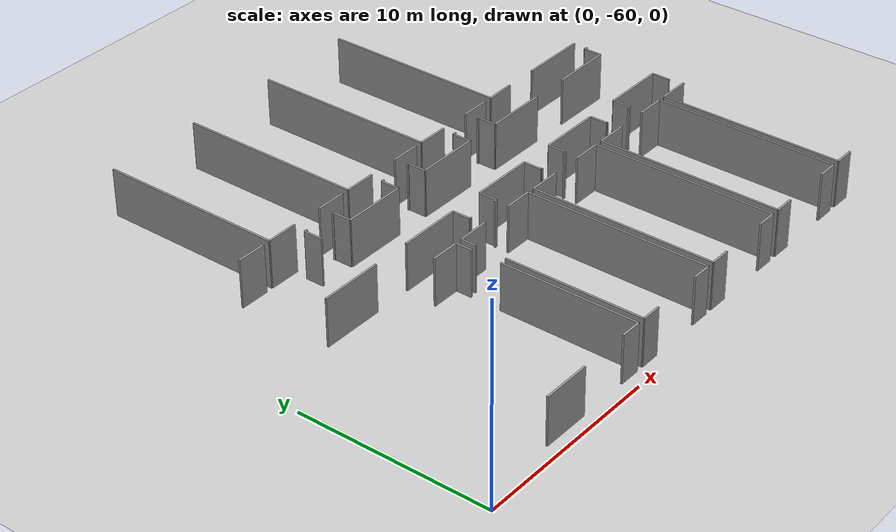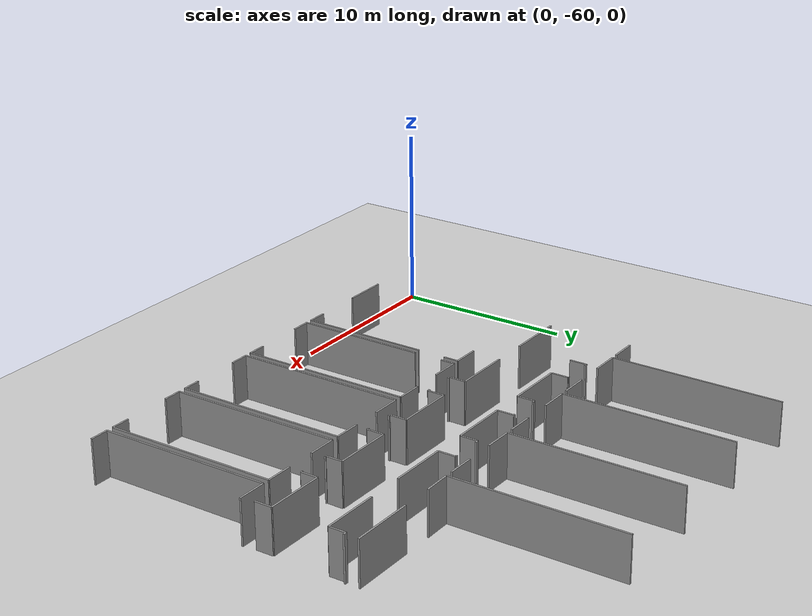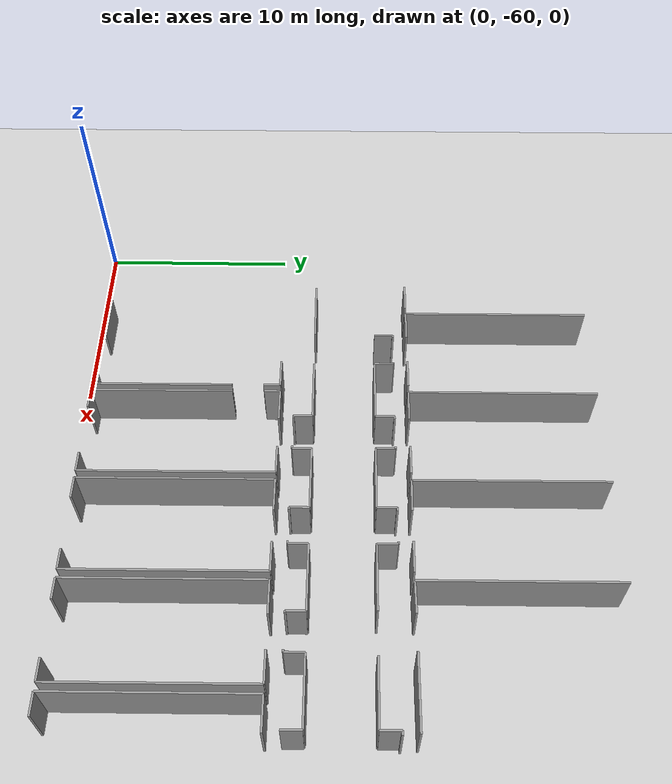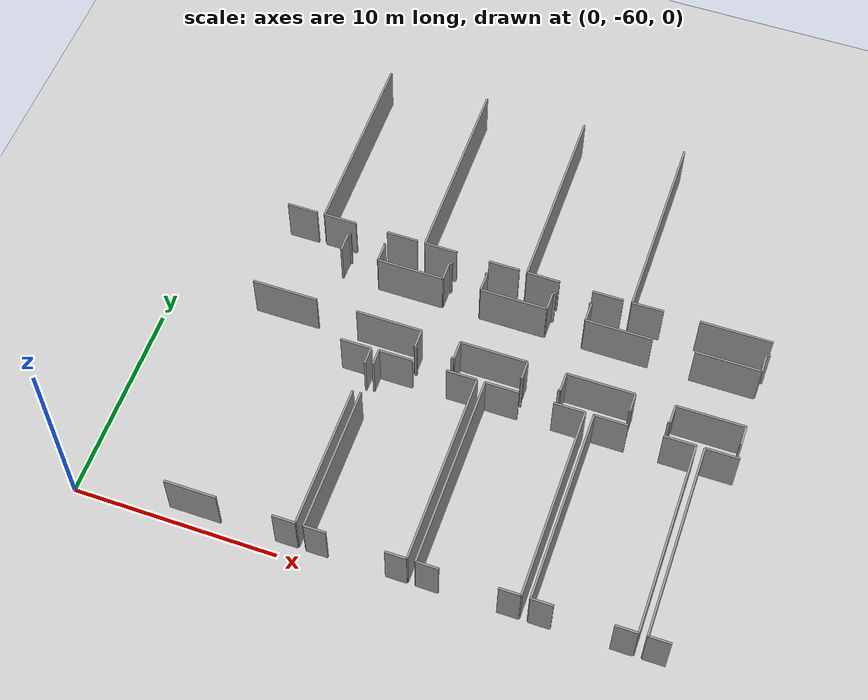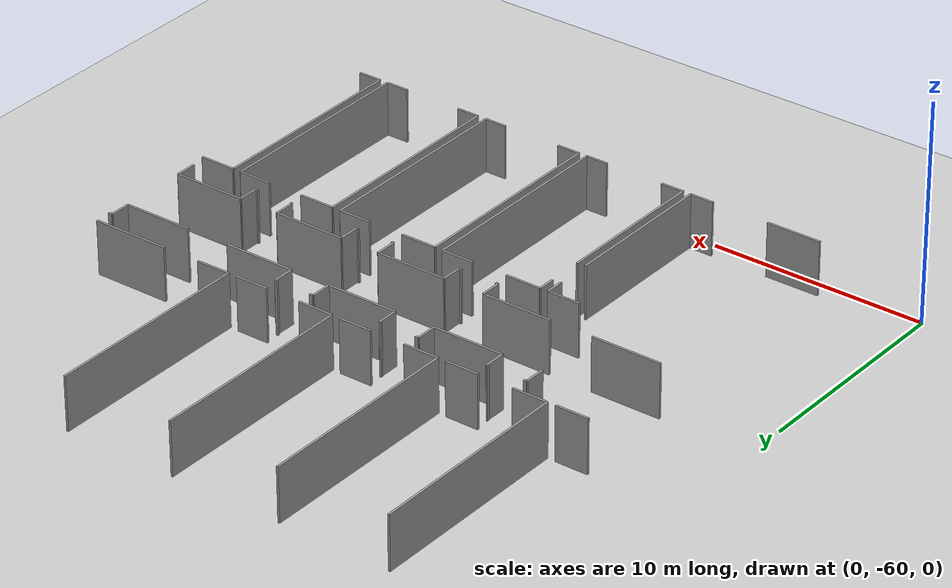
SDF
<sdf version="1.6">
 <world name="default">
  <model name="ground_plane">
   <static>1</static>
   <link name="link">
    <collision name="collision">
     <geometry><plane><normal>0 0 1</normal><size>100 100</size></plane></geometry>
     <surface><friction><ode><mu>100</mu><mu2>50</mu2></ode></friction></surface>
    </collision>
    <visual name="visual">
     <cast_shadows>0</cast_shadows>
     <geometry><plane><normal>0 0 1</normal><size>100 100</size></plane></geometry>
     <material>
      <script><uri>file://media/materials/scripts/gazebo.material</uri><name>Gazebo/Grey</name></script>
     </material>
    </visual>
   </link>
  </model>
  <model name="0510045926_A-40">
   <static>1</static>
   <link name="Wall_1776">
    <collision name="Wall_1776_Collision">
     <geometry><box><size>0.975739768884 0.1 2.5</size></box></geometry>
     <pose>0.487869884442 0 1.25 0 0 0</pose>
    </collision>
    <visual name="Wall_1776_Visual">
     <pose>0.487869884442 0 1.25 0 0 0</pose>
     <geometry><box><size>0.975739768884 0.1 2.5</size></box></geometry>
     <material>
      <script><uri>file://media/materials/scripts/gazebo.material</uri><name>Gazebo/Grey</name></script>
      <ambient>1 1 1 1</ambient>
     </material>
    </visual>
    <pose>141.415533401 -145.978233693 0 0 0 1.57079632679</pose>
   </link>
   <link name="Wall_1777">
    <collision name="Wall_1777_Collision">
     <geometry><box><size>0.142147312845 0.1 2.5</size></box></geometry>
     <pose>0.0710736564223 0 1.25 0 0 0</pose>
    </collision>
    <visual name="Wall_1777_Visual">
     <pose>0.0710736564223 0 1.25 0 0 0</pose>
     <geometry><box><size>0.142147312845 0.1 2.5</size></box></geometry>
     <material>
      <script><uri>file://media/materials/scripts/gazebo.material</uri><name>Gazebo/Grey</name></script>
      <ambient>1 1 1 1</ambient>
     </material>
    </visual>
    <pose>141.415533401 -145.002493924 0 0 0 0.0</pose>
   </link>
   <link name="Wall_1778">
    <collision name="Wall_1778_Collision">
     <geometry><box><size>0.0753888427051 0.1 2.5</size></box></geometry>
     <pose>0.0376944213526 0 1.25 0 0 0</pose>
    </collision>
    <visual name="Wall_1778_Visual">
     <pose>0.0376944213526 0 1.25 0 0 0</pose>
     <geometry><box><size>0.0753888427051 0.1 2.5</size></box></geometry>
     <material>
      <script><uri>file://media/materials/scripts/gazebo.material</uri><name>Gazebo/Grey</name></script>
      <ambient>1 1 1 1</ambient>
     </material>
    </visual>
    <pose>143.243649378 -145.002493924 0 0 0 0.0</pose>
   </link>
   <link name="Wall_1779">
    <collision name="Wall_1779_Collision">
     <geometry><box><size>0.976755106833 0.1 2.5</size></box></geometry>
     <pose>0.488377553416 0 1.25 0 0 0</pose>
    </collision>
    <visual name="Wall_1779_Visual">
     <pose>0.488377553416 0 1.25 0 0 0</pose>
     <geometry><box><size>0.976755106833 0.1 2.5</size></box></geometry>
     <material>
      <script><uri>file://media/materials/scripts/gazebo.material</uri><name>Gazebo/Grey</name></script>
      <ambient>1 1 1 1</ambient>
     </material>
    </visual>
    <pose>143.319038221 -145.002493924 0 0 0 -1.57079632679</pose>
   </link>
   <link name="Wall_1780">
    <collision name="Wall_1780_Collision">
     <geometry><box><size>3.30873254095 0.1 2.5</size></box></geometry>
     <pose>1.65436627047 0 1.25 0 0 0</pose>
    </collision>
    <visual name="Wall_1780_Visual">
     <pose>1.65436627047 0 1.25 0 0 0</pose>
     <geometry><box><size>3.30873254095 0.1 2.5</size></box></geometry>
     <material>
      <script><uri>file://media/materials/scripts/gazebo.material</uri><name>Gazebo/Grey</name></script>
      <ambient>1 1 1 1</ambient>
     </material>
    </visual>
    <pose>143.319038221 -145.979249031 0 0 0 0.0</pose>
   </link>
   <link name="Wall_1781">
    <collision name="Wall_1781_Collision">
     <geometry><box><size>0.96964774119 0.1 2.5</size></box></geometry>
     <pose>0.484823870595 0 1.25 0 0 0</pose>
    </collision>
    <visual name="Wall_1781_Visual">
     <pose>0.484823870595 0 1.25 0 0 0</pose>
     <geometry><box><size>0.96964774119 0.1 2.5</size></box></geometry>
     <material>
      <script><uri>file://media/materials/scripts/gazebo.material</uri><name>Gazebo/Grey</name></script>
      <ambient>1 1 1 1</ambient>
     </material>
    </visual>
    <pose>146.627770762 -145.979249031 0 0 0 1.57079632679</pose>
   </link>
   <link name="Wall_1782">
    <collision name="Wall_1782_Collision">
     <geometry><box><size>0.155092871693 0.1 2.5</size></box></geometry>
     <pose>0.0775464358465 0 1.25 0 0 0</pose>
    </collision>
    <visual name="Wall_1782_Visual">
     <pose>0.0775464358465 0 1.25 0 0 0</pose>
     <geometry><box><size>0.155092871693 0.1 2.5</size></box></geometry>
     <material>
      <script><uri>file://media/materials/scripts/gazebo.material</uri><name>Gazebo/Grey</name></script>
      <ambient>1 1 1 1</ambient>
     </material>
    </visual>
    <pose>146.627770762 -145.009601289 0 0 0 0.0</pose>
   </link>
   <link name="Wall_1783">
    <collision name="Wall_1783_Collision">
     <geometry><box><size>0.0840192152707 0.1 2.5</size></box></geometry>
     <pose>0.0420096076354 0 1.25 0 0 0</pose>
    </collision>
    <visual name="Wall_1783_Visual">
     <pose>0.0420096076354 0 1.25 0 0 0</pose>
     <geometry><box><size>0.0840192152707 0.1 2.5</size></box></geometry>
     <material>
      <script><uri>file://media/materials/scripts/gazebo.material</uri><name>Gazebo/Grey</name></script>
      <ambient>1 1 1 1</ambient>
     </material>
    </visual>
    <pose>148.459694256 -145.009601289 0 0 0 0.0</pose>
   </link>
   <link name="Wall_1784">
    <collision name="Wall_1784_Collision">
     <geometry><box><size>0.966347892856 0.1 2.5</size></box></geometry>
     <pose>0.483173946428 0 1.25 0 0 0</pose>
    </collision>
    <visual name="Wall_1784_Visual">
     <pose>0.483173946428 0 1.25 0 0 0</pose>
     <geometry><box><size>0.966347892856 0.1 2.5</size></box></geometry>
     <material>
      <script><uri>file://media/materials/scripts/gazebo.material</uri><name>Gazebo/Grey</name></script>
      <ambient>1 1 1 1</ambient>
     </material>
    </visual>
    <pose>148.543713472 -145.009601289 0 0 0 -1.57079632679</pose>
   </link>
   <link name="Wall_1785">
    <collision name="Wall_1785_Collision">
     <geometry><box><size>3.30543269261 0.1 2.5</size></box></geometry>
     <pose>1.65271634631 0 1.25 0 0 0</pose>
    </collision>
    <visual name="Wall_1785_Visual">
     <pose>1.65271634631 0 1.25 0 0 0</pose>
     <geometry><box><size>3.30543269261 0.1 2.5</size></box></geometry>
     <material>
      <script><uri>file://media/materials/scripts/gazebo.material</uri><name>Gazebo/Grey</name></script>
      <ambient>1 1 1 1</ambient>
     </material>
    </visual>
    <pose>148.543713472 -145.975949182 0 0 0 0.0</pose>
   </link>
   <link name="Wall_1786">
    <collision name="Wall_1786_Collision">
     <geometry><box><size>0.97878578273 0.1 2.5</size></box></geometry>
     <pose>0.489392891365 0 1.25 0 0 0</pose>
    </collision>
    <visual name="Wall_1786_Visual">
     <pose>0.489392891365 0 1.25 0 0 0</pose>
     <geometry><box><size>0.97878578273 0.1 2.5</size></box></geometry>
     <material>
      <script><uri>file://media/materials/scripts/gazebo.material</uri><name>Gazebo/Grey</name></script>
      <ambient>1 1 1 1</ambient>
     </material>
    </visual>
    <pose>151.849146164 -145.975949182 0 0 0 1.57079632679</pose>
   </link>
   <link name="Wall_1787">
    <collision name="Wall_1787_Collision">
     <geometry><box><size>0.169307602977 0.1 2.5</size></box></geometry>
     <pose>0.0846538014887 0 1.25 0 0 0</pose>
    </collision>
    <visual name="Wall_1787_Visual">
     <pose>0.0846538014887 0 1.25 0 0 0</pose>
     <geometry><box><size>0.169307602977 0.1 2.5</size></box></geometry>
     <material>
      <script><uri>file://media/materials/scripts/gazebo.material</uri><name>Gazebo/Grey</name></script>
      <ambient>1 1 1 1</ambient>
     </material>
    </visual>
    <pose>151.849146164 -144.9971634 0 0 0 0.0</pose>
   </link>
   <link name="Wall_1788">
    <collision name="Wall_1788_Collision">
     <geometry><box><size>0.109148829506 0.1 2.5</size></box></geometry>
     <pose>0.0545744147529 0 1.25 0 0 0</pose>
    </collision>
    <visual name="Wall_1788_Visual">
     <pose>0.0545744147529 0 1.25 0 0 0</pose>
     <geometry><box><size>0.109148829506 0.1 2.5</size></box></geometry>
     <material>
      <script><uri>file://media/materials/scripts/gazebo.material</uri><name>Gazebo/Grey</name></script>
      <ambient>1 1 1 1</ambient>
     </material>
    </visual>
    <pose>153.651878692 -144.9971634 0 0 0 0.0</pose>
   </link>
   <link name="Wall_1789">
    <collision name="Wall_1789_Collision">
     <geometry><box><size>0.985893148373 0.1 2.5</size></box></geometry>
     <pose>0.492946574186 0 1.25 0 0 0</pose>
    </collision>
    <visual name="Wall_1789_Visual">
     <pose>0.492946574186 0 1.25 0 0 0</pose>
     <geometry><box><size>0.985893148373 0.1 2.5</size></box></geometry>
     <material>
      <script><uri>file://media/materials/scripts/gazebo.material</uri><name>Gazebo/Grey</name></script>
      <ambient>1 1 1 1</ambient>
     </material>
    </visual>
    <pose>153.761027522 -144.9971634 0 0 0 -1.57079632679</pose>
   </link>
   <link name="Wall_1790">
    <collision name="Wall_1790_Collision">
     <geometry><box><size>3.28614127158 0.1 2.5</size></box></geometry>
     <pose>1.64307063579 0 1.25 0 0 0</pose>
    </collision>
    <visual name="Wall_1790_Visual">
     <pose>1.64307063579 0 1.25 0 0 0</pose>
     <geometry><box><size>3.28614127158 0.1 2.5</size></box></geometry>
     <material>
      <script><uri>file://media/materials/scripts/gazebo.material</uri><name>Gazebo/Grey</name></script>
      <ambient>1 1 1 1</ambient>
     </material>
    </visual>
    <pose>153.761027522 -145.983056548 0 0 0 0.0</pose>
   </link>
   <link name="Wall_1791">
    <collision name="Wall_1791_Collision">
     <geometry><box><size>3.20339122875 0.1 2.5</size></box></geometry>
     <pose>1.60169561437 0 1.25 0 0 0</pose>
    </collision>
    <visual name="Wall_1791_Visual">
     <pose>1.60169561437 0 1.25 0 0 0</pose>
     <geometry><box><size>3.20339122875 0.1 2.5</size></box></geometry>
     <material>
      <script><uri>file://media/materials/scripts/gazebo.material</uri><name>Gazebo/Grey</name></script>
      <ambient>1 1 1 1</ambient>
     </material>
    </visual>
    <pose>159.087490402 -145.983056548 0 0 0 0.0</pose>
   </link>
   <link name="Wall_1792">
    <collision name="Wall_1792_Collision">
     <geometry><box><size>0.950356320161 0.1 2.5</size></box></geometry>
     <pose>0.475178160081 0 1.25 0 0 0</pose>
    </collision>
    <visual name="Wall_1792_Visual">
     <pose>0.475178160081 0 1.25 0 0 0</pose>
     <geometry><box><size>0.950356320161 0.1 2.5</size></box></geometry>
     <material>
      <script><uri>file://media/materials/scripts/gazebo.material</uri><name>Gazebo/Grey</name></script>
      <ambient>1 1 1 1</ambient>
     </material>
    </visual>
    <pose>162.290881631 -145.983056548 0 0 0 1.57079632679</pose>
   </link>
   <link name="Wall_1793">
    <collision name="Wall_1793_Collision">
     <geometry><box><size>0.18098398939 0.1 2.5</size></box></geometry>
     <pose>0.0904919946949 0 1.25 0 0 0</pose>
    </collision>
    <visual name="Wall_1793_Visual">
     <pose>0.0904919946949 0 1.25 0 0 0</pose>
     <geometry><box><size>0.18098398939 0.1 2.5</size></box></geometry>
     <material>
      <script><uri>file://media/materials/scripts/gazebo.material</uri><name>Gazebo/Grey</name></script>
      <ambient>1 1 1 1</ambient>
     </material>
    </visual>
    <pose>162.290881631 -145.032700228 0 0 0 0.0</pose>
   </link>
   <link name="Wall_1829">
    <collision name="Wall_1829_Collision">
     <geometry><box><size>0.968886237729 0.1 2.5</size></box></geometry>
     <pose>0.484443118864 0 1.25 0 0 0</pose>
    </collision>
    <visual name="Wall_1829_Visual">
     <pose>0.484443118864 0 1.25 0 0 0</pose>
     <geometry><box><size>0.968886237729 0.1 2.5</size></box></geometry>
     <material>
      <script><uri>file://media/materials/scripts/gazebo.material</uri><name>Gazebo/Grey</name></script>
      <ambient>1 1 1 1</ambient>
     </material>
    </visual>
    <pose>162.309665383 -150.078675999 0 0 0 1.57079632679</pose>
   </link>
   <link name="Wall_1830">
    <collision name="Wall_1830_Collision">
     <geometry><box><size>3.32447027915 0.1 2.5</size></box></geometry>
     <pose>1.66223513958 0 1.25 0 0 0</pose>
    </collision>
    <visual name="Wall_1830_Visual">
     <pose>1.66223513958 0 1.25 0 0 0</pose>
     <geometry><box><size>3.32447027915 0.1 2.5</size></box></geometry>
     <material>
      <script><uri>file://media/materials/scripts/gazebo.material</uri><name>Gazebo/Grey</name></script>
      <ambient>1 1 1 1</ambient>
     </material>
    </visual>
    <pose>162.309665383 -149.109789762 0 0 0 3.14159265359</pose>
   </link>
   <link name="Wall_1831">
    <collision name="Wall_1831_Collision">
     <geometry><box><size>0.945279630417 0.1 2.5</size></box></geometry>
     <pose>0.472639815208 0 1.25 0 0 0</pose>
    </collision>
    <visual name="Wall_1831_Visual">
     <pose>0.472639815208 0 1.25 0 0 0</pose>
     <geometry><box><size>0.945279630417 0.1 2.5</size></box></geometry>
     <material>
      <script><uri>file://media/materials/scripts/gazebo.material</uri><name>Gazebo/Grey</name></script>
      <ambient>1 1 1 1</ambient>
     </material>
    </visual>
    <pose>158.985195104 -149.109789762 0 0 0 -1.57079632679</pose>
   </link>
   <link name="Wall_1832">
    <collision name="Wall_1832_Collision">
     <geometry><box><size>0.116510029635 0.1 2.5</size></box></geometry>
     <pose>0.0582550148176 0 1.25 0 0 0</pose>
    </collision>
    <visual name="Wall_1832_Visual">
     <pose>0.0582550148176 0 1.25 0 0 0</pose>
     <geometry><box><size>0.116510029635 0.1 2.5</size></box></geometry>
     <material>
      <script><uri>file://media/materials/scripts/gazebo.material</uri><name>Gazebo/Grey</name></script>
      <ambient>1 1 1 1</ambient>
     </material>
    </visual>
    <pose>158.985195104 -150.055069392 0 0 0 3.14159265359</pose>
   </link>
   <link name="Wall_1833">
    <collision name="Wall_1833_Collision">
     <geometry><box><size>0.078688691039 0.1 2.5</size></box></geometry>
     <pose>0.0393443455195 0 1.25 0 0 0</pose>
    </collision>
    <visual name="Wall_1833_Visual">
     <pose>0.0393443455195 0 1.25 0 0 0</pose>
     <geometry><box><size>0.078688691039 0.1 2.5</size></box></geometry>
     <material>
      <script><uri>file://media/materials/scripts/gazebo.material</uri><name>Gazebo/Grey</name></script>
      <ambient>1 1 1 1</ambient>
     </material>
    </visual>
    <pose>157.164440327 -150.055069392 0 0 0 3.14159265359</pose>
   </link>
   <link name="Wall_1834">
    <collision name="Wall_1834_Collision">
     <geometry><box><size>0.94223361657 0.1 2.5</size></box></geometry>
     <pose>0.471116808285 0 1.25 0 0 0</pose>
    </collision>
    <visual name="Wall_1834_Visual">
     <pose>0.471116808285 0 1.25 0 0 0</pose>
     <geometry><box><size>0.94223361657 0.1 2.5</size></box></geometry>
     <material>
      <script><uri>file://media/materials/scripts/gazebo.material</uri><name>Gazebo/Grey</name></script>
      <ambient>1 1 1 1</ambient>
     </material>
    </visual>
    <pose>157.085751636 -150.055069392 0 0 0 1.57079632679</pose>
   </link>
   <link name="Wall_1835">
    <collision name="Wall_1835_Collision">
     <geometry><box><size>3.31660141005 0.1 2.5</size></box></geometry>
     <pose>1.65830070503 0 1.25 0 0 0</pose>
    </collision>
    <visual name="Wall_1835_Visual">
     <pose>1.65830070503 0 1.25 0 0 0</pose>
     <geometry><box><size>3.31660141005 0.1 2.5</size></box></geometry>
     <material>
      <script><uri>file://media/materials/scripts/gazebo.material</uri><name>Gazebo/Grey</name></script>
      <ambient>1 1 1 1</ambient>
     </material>
    </visual>
    <pose>157.085751636 -149.112835775 0 0 0 3.14159265359</pose>
   </link>
   <link name="Wall_1836">
    <collision name="Wall_1836_Collision">
     <geometry><box><size>0.966855561831 0.1 2.5</size></box></geometry>
     <pose>0.483427780915 0 1.25 0 0 0</pose>
    </collision>
    <visual name="Wall_1836_Visual">
     <pose>0.483427780915 0 1.25 0 0 0</pose>
     <geometry><box><size>0.966855561831 0.1 2.5</size></box></geometry>
     <material>
      <script><uri>file://media/materials/scripts/gazebo.material</uri><name>Gazebo/Grey</name></script>
      <ambient>1 1 1 1</ambient>
     </material>
    </visual>
    <pose>153.769150226 -149.112835775 0 0 0 -1.57079632679</pose>
   </link>
   <link name="Wall_1837">
    <collision name="Wall_1837_Collision">
     <geometry><box><size>0.121332884892 0.1 2.5</size></box></geometry>
     <pose>0.0606664424462 0 1.25 0 0 0</pose>
    </collision>
    <visual name="Wall_1837_Visual">
     <pose>0.0606664424462 0 1.25 0 0 0</pose>
     <geometry><box><size>0.121332884892 0.1 2.5</size></box></geometry>
     <material>
      <script><uri>file://media/materials/scripts/gazebo.material</uri><name>Gazebo/Grey</name></script>
      <ambient>1 1 1 1</ambient>
     </material>
    </visual>
    <pose>153.769150226 -150.079691337 0 0 0 3.14159265359</pose>
   </link>
   <link name="Wall_1838">
    <collision name="Wall_1838_Collision">
     <geometry><box><size>0.106102815659 0.1 2.5</size></box></geometry>
     <pose>0.0530514078295 0 1.25 0 0 0</pose>
    </collision>
    <visual name="Wall_1838_Visual">
     <pose>0.0530514078295 0 1.25 0 0 0</pose>
     <geometry><box><size>0.106102815659 0.1 2.5</size></box></geometry>
     <material>
      <script><uri>file://media/materials/scripts/gazebo.material</uri><name>Gazebo/Grey</name></script>
      <ambient>1 1 1 1</ambient>
     </material>
    </visual>
    <pose>151.987232125 -150.079691337 0 0 0 3.14159265359</pose>
   </link>
   <link name="Wall_1839">
    <collision name="Wall_1839_Collision">
     <geometry><box><size>0.972947589524 0.1 2.5</size></box></geometry>
     <pose>0.486473794762 0 1.25 0 0 0</pose>
    </collision>
    <visual name="Wall_1839_Visual">
     <pose>0.486473794762 0 1.25 0 0 0</pose>
     <geometry><box><size>0.972947589524 0.1 2.5</size></box></geometry>
     <material>
      <script><uri>file://media/materials/scripts/gazebo.material</uri><name>Gazebo/Grey</name></script>
      <ambient>1 1 1 1</ambient>
     </material>
    </visual>
    <pose>151.88112931 -150.079691337 0 0 0 1.57079632679</pose>
   </link>
   <link name="Wall_1840">
    <collision name="Wall_1840_Collision">
     <geometry><box><size>3.3036558512 0.1 2.5</size></box></geometry>
     <pose>1.6518279256 0 1.25 0 0 0</pose>
    </collision>
    <visual name="Wall_1840_Visual">
     <pose>1.6518279256 0 1.25 0 0 0</pose>
     <geometry><box><size>3.3036558512 0.1 2.5</size></box></geometry>
     <material>
      <script><uri>file://media/materials/scripts/gazebo.material</uri><name>Gazebo/Grey</name></script>
      <ambient>1 1 1 1</ambient>
     </material>
    </visual>
    <pose>151.88112931 -149.106743748 0 0 0 3.14159265359</pose>
   </link>
   <link name="Wall_1841">
    <collision name="Wall_1841_Collision">
     <geometry><box><size>0.952386996059 0.1 2.5</size></box></geometry>
     <pose>0.47619349803 0 1.25 0 0 0</pose>
    </collision>
    <visual name="Wall_1841_Visual">
     <pose>0.47619349803 0 1.25 0 0 0</pose>
     <geometry><box><size>0.952386996059 0.1 2.5</size></box></geometry>
     <material>
      <script><uri>file://media/materials/scripts/gazebo.material</uri><name>Gazebo/Grey</name></script>
      <ambient>1 1 1 1</ambient>
     </material>
    </visual>
    <pose>148.577473458 -149.106743748 0 0 0 -1.57079632679</pose>
   </link>
   <link name="Wall_1842">
    <collision name="Wall_1842_Collision">
     <geometry><box><size>0.131993933356 0.1 2.5</size></box></geometry>
     <pose>0.0659969666779 0 1.25 0 0 0</pose>
    </collision>
    <visual name="Wall_1842_Visual">
     <pose>0.0659969666779 0 1.25 0 0 0</pose>
     <geometry><box><size>0.131993933356 0.1 2.5</size></box></geometry>
     <material>
      <script><uri>file://media/materials/scripts/gazebo.material</uri><name>Gazebo/Grey</name></script>
      <ambient>1 1 1 1</ambient>
     </material>
    </visual>
    <pose>148.577473458 -150.059130744 0 0 0 3.14159265359</pose>
   </link>
   <link name="Wall_1843">
    <collision name="Wall_1843_Collision">
     <geometry><box><size>0.117779202071 0.1 2.5</size></box></geometry>
     <pose>0.0588896010357 0 1.25 0 0 0</pose>
    </collision>
    <visual name="Wall_1843_Visual">
     <pose>0.0588896010357 0 1.25 0 0 0</pose>
     <geometry><box><size>0.117779202071 0.1 2.5</size></box></geometry>
     <material>
      <script><uri>file://media/materials/scripts/gazebo.material</uri><name>Gazebo/Grey</name></script>
      <ambient>1 1 1 1</ambient>
     </material>
    </visual>
    <pose>146.763318378 -150.059130744 0 0 0 3.14159265359</pose>
   </link>
   <link name="Wall_1844">
    <collision name="Wall_1844_Collision">
     <geometry><box><size>0.952894665034 0.1 2.5</size></box></geometry>
     <pose>0.476447332517 0 1.25 0 0 0</pose>
    </collision>
    <visual name="Wall_1844_Visual">
     <pose>0.476447332517 0 1.25 0 0 0</pose>
     <geometry><box><size>0.952894665034 0.1 2.5</size></box></geometry>
     <material>
      <script><uri>file://media/materials/scripts/gazebo.material</uri><name>Gazebo/Grey</name></script>
      <ambient>1 1 1 1</ambient>
     </material>
    </visual>
    <pose>146.645539176 -150.059130744 0 0 0 1.57079632679</pose>
   </link>
   <link name="Wall_1845">
    <collision name="Wall_1845_Collision">
     <geometry><box><size>3.26659601607 0.1 2.5</size></box></geometry>
     <pose>1.63329800803 0 1.25 0 0 0</pose>
    </collision>
    <visual name="Wall_1845_Visual">
     <pose>1.63329800803 0 1.25 0 0 0</pose>
     <geometry><box><size>3.26659601607 0.1 2.5</size></box></geometry>
     <material>
      <script><uri>file://media/materials/scripts/gazebo.material</uri><name>Gazebo/Grey</name></script>
      <ambient>1 1 1 1</ambient>
     </material>
    </visual>
    <pose>146.645539176 -149.106236079 0 0 0 3.14159265359</pose>
   </link>
   <link name="Wall_1846">
    <collision name="Wall_1846_Collision">
     <geometry><box><size>3.25542729863 0.1 2.5</size></box></geometry>
     <pose>1.62771364931 0 1.25 0 0 0</pose>
    </collision>
    <visual name="Wall_1846_Visual">
     <pose>1.62771364931 0 1.25 0 0 0</pose>
     <geometry><box><size>3.25542729863 0.1 2.5</size></box></geometry>
     <material>
      <script><uri>file://media/materials/scripts/gazebo.material</uri><name>Gazebo/Grey</name></script>
      <ambient>1 1 1 1</ambient>
     </material>
    </visual>
    <pose>141.36679718 -149.106236079 0 0 0 3.14159265359</pose>
   </link>
   <link name="Wall_1865">
    <collision name="Wall_1865_Collision">
     <geometry><box><size>1.52249925436 0.1 2.5</size></box></geometry>
     <pose>0.761249627181 0 1.25 0 0 0</pose>
    </collision>
    <visual name="Wall_1865_Visual">
     <pose>0.761249627181 0 1.25 0 0 0</pose>
     <geometry><box><size>1.52249925436 0.1 2.5</size></box></geometry>
     <material>
      <script><uri>file://media/materials/scripts/gazebo.material</uri><name>Gazebo/Grey</name></script>
      <ambient>1 1 1 1</ambient>
     </material>
    </visual>
    <pose>143.221819613 -150.803627295 0 0 0 0.0</pose>
   </link>
   <link name="Wall_1866">
    <collision name="Wall_1866_Collision">
     <geometry><box><size>0.862021918608 0.1 2.5</size></box></geometry>
     <pose>0.431010959304 0 1.25 0 0 0</pose>
    </collision>
    <visual name="Wall_1866_Visual">
     <pose>0.431010959304 0 1.25 0 0 0</pose>
     <geometry><box><size>0.862021918608 0.1 2.5</size></box></geometry>
     <material>
      <script><uri>file://media/materials/scripts/gazebo.material</uri><name>Gazebo/Grey</name></script>
      <ambient>1 1 1 1</ambient>
     </material>
    </visual>
    <pose>144.744318867 -150.803627295 0 0 0 -1.57079632679</pose>
   </link>
   <link name="Wall_1867">
    <collision name="Wall_1867_Collision">
     <geometry><box><size>7.16270156045 0.1 2.5</size></box></geometry>
     <pose>3.58135078022 0 1.25 0 0 0</pose>
    </collision>
    <visual name="Wall_1867_Visual">
     <pose>3.58135078022 0 1.25 0 0 0</pose>
     <geometry><box><size>7.16270156045 0.1 2.5</size></box></geometry>
     <material>
      <script><uri>file://media/materials/scripts/gazebo.material</uri><name>Gazebo/Grey</name></script>
      <ambient>1 1 1 1</ambient>
     </material>
    </visual>
    <pose>144.744318867 -153.250591752 0 0 0 -1.57079632679</pose>
   </link>
   <link name="Wall_1868">
    <collision name="Wall_1868_Collision">
     <geometry><box><size>1.1125565575 0.1 2.5</size></box></geometry>
     <pose>0.556278278748 0 1.25 0 0 0</pose>
    </collision>
    <visual name="Wall_1868_Visual">
     <pose>0.556278278748 0 1.25 0 0 0</pose>
     <geometry><box><size>1.1125565575 0.1 2.5</size></box></geometry>
     <material>
      <script><uri>file://media/materials/scripts/gazebo.material</uri><name>Gazebo/Grey</name></script>
      <ambient>1 1 1 1</ambient>
     </material>
    </visual>
    <pose>144.744318867 -160.413293312 0 0 0 3.14159265359</pose>
   </link>
   <link name="Wall_1869">
    <collision name="Wall_1869_Collision">
     <geometry><box><size>2.52413014094 0.1 2.5</size></box></geometry>
     <pose>1.26206507047 0 1.25 0 0 0</pose>
    </collision>
    <visual name="Wall_1869_Visual">
     <pose>1.26206507047 0 1.25 0 0 0</pose>
     <geometry><box><size>2.52413014094 0.1 2.5</size></box></geometry>
     <material>
      <script><uri>file://media/materials/scripts/gazebo.material</uri><name>Gazebo/Grey</name></script>
      <ambient>1 1 1 1</ambient>
     </material>
    </visual>
    <pose>140.959392828 -160.413293312 0 0 0 3.14159265359</pose>
   </link>
   <link name="Wall_1871">
    <collision name="Wall_1871_Collision">
     <geometry><box><size>7.21143778199 0.1 2.5</size></box></geometry>
     <pose>3.605718891 0 1.25 0 0 0</pose>
    </collision>
    <visual name="Wall_1871_Visual">
     <pose>3.605718891 0 1.25 0 0 0</pose>
     <geometry><box><size>7.21143778199 0.1 2.5</size></box></geometry>
     <material>
      <script><uri>file://media/materials/scripts/gazebo.material</uri><name>Gazebo/Grey</name></script>
      <ambient>1 1 1 1</ambient>
     </material>
    </visual>
    <pose>145.129639618 -160.421162181 0 0 0 1.57079632679</pose>
   </link>
   <link name="Wall_1872">
    <collision name="Wall_1872_Collision">
     <geometry><box><size>0.809478179753 0.1 2.5</size></box></geometry>
     <pose>0.404739089876 0 1.25 0 0 0</pose>
    </collision>
    <visual name="Wall_1872_Visual">
     <pose>0.404739089876 0 1.25 0 0 0</pose>
     <geometry><box><size>0.809478179753 0.1 2.5</size></box></geometry>
     <material>
      <script><uri>file://media/materials/scripts/gazebo.material</uri><name>Gazebo/Grey</name></script>
      <ambient>1 1 1 1</ambient>
     </material>
    </visual>
    <pose>145.129639618 -151.596606233 0 0 0 1.57079632679</pose>
   </link>
   <link name="Wall_1873">
    <collision name="Wall_1873_Collision">
     <geometry><box><size>1.67403844323 0.1 2.5</size></box></geometry>
     <pose>0.837019221617 0 1.25 0 0 0</pose>
    </collision>
    <visual name="Wall_1873_Visual">
     <pose>0.837019221617 0 1.25 0 0 0</pose>
     <geometry><box><size>1.67403844323 0.1 2.5</size></box></geometry>
     <material>
      <script><uri>file://media/materials/scripts/gazebo.material</uri><name>Gazebo/Grey</name></script>
      <ambient>1 1 1 1</ambient>
     </material>
    </visual>
    <pose>145.129639618 -150.787128053 0 0 0 0.0</pose>
   </link>
   <link name="Wall_1874">
    <collision name="Wall_1874_Collision">
     <geometry><box><size>1.49457746077 0.1 2.5</size></box></geometry>
     <pose>0.747288730383 0 1.25 0 0 0</pose>
    </collision>
    <visual name="Wall_1874_Visual">
     <pose>0.747288730383 0 1.25 0 0 0</pose>
     <geometry><box><size>1.49457746077 0.1 2.5</size></box></geometry>
     <material>
      <script><uri>file://media/materials/scripts/gazebo.material</uri><name>Gazebo/Grey</name></script>
      <ambient>1 1 1 1</ambient>
     </material>
    </visual>
    <pose>148.464770946 -150.787128053 0 0 0 0.0</pose>
   </link>
   <link name="Wall_1875">
    <collision name="Wall_1875_Collision">
     <geometry><box><size>9.62718059689 0.1 2.5</size></box></geometry>
     <pose>4.81359029845 0 1.25 0 0 0</pose>
    </collision>
    <visual name="Wall_1875_Visual">
     <pose>4.81359029845 0 1.25 0 0 0</pose>
     <geometry><box><size>9.62718059689 0.1 2.5</size></box></geometry>
     <material>
      <script><uri>file://media/materials/scripts/gazebo.material</uri><name>Gazebo/Grey</name></script>
      <ambient>1 1 1 1</ambient>
     </material>
    </visual>
    <pose>149.959348407 -150.787128053 0 0 0 -1.57079632679</pose>
   </link>
   <link name="Wall_1876">
    <collision name="Wall_1876_Collision">
     <geometry><box><size>1.0310756871 0.1 2.5</size></box></geometry>
     <pose>0.515537843549 0 1.25 0 0 0</pose>
    </collision>
    <visual name="Wall_1876_Visual">
     <pose>0.515537843549 0 1.25 0 0 0</pose>
     <geometry><box><size>1.0310756871 0.1 2.5</size></box></geometry>
     <material>
      <script><uri>file://media/materials/scripts/gazebo.material</uri><name>Gazebo/Grey</name></script>
      <ambient>1 1 1 1</ambient>
     </material>
    </visual>
    <pose>149.959348407 -160.41430865 0 0 0 3.14159265359</pose>
   </link>
   <link name="Wall_1877">
    <collision name="Wall_1877_Collision">
     <geometry><box><size>1.05292775813 0.1 2.5</size></box></geometry>
     <pose>0.526463879066 0 1.25 0 0 0</pose>
    </collision>
    <visual name="Wall_1877_Visual">
     <pose>0.526463879066 0 1.25 0 0 0</pose>
     <geometry><box><size>1.05292775813 0.1 2.5</size></box></geometry>
     <material>
      <script><uri>file://media/materials/scripts/gazebo.material</uri><name>Gazebo/Grey</name></script>
      <ambient>1 1 1 1</ambient>
     </material>
    </visual>
    <pose>146.182545071 -160.41430865 0 0 0 -3.13508358448</pose>
   </link>
   <link name="Wall_1878">
    <collision name="Wall_1878_Collision">
     <geometry><box><size>9.6091583483 0.1 2.5</size></box></geometry>
     <pose>4.80457917415 0 1.25 0 0 0</pose>
    </collision>
    <visual name="Wall_1878_Visual">
     <pose>4.80457917415 0 1.25 0 0 0</pose>
     <geometry><box><size>9.6091583483 0.1 2.5</size></box></geometry>
     <material>
      <script><uri>file://media/materials/scripts/gazebo.material</uri><name>Gazebo/Grey</name></script>
      <ambient>1 1 1 1</ambient>
     </material>
    </visual>
    <pose>150.355584041 -160.409993464 0 0 0 1.57079632679</pose>
   </link>
   <link name="Wall_1879">
    <collision name="Wall_1879_Collision">
     <geometry><box><size>1.66490040169 0.1 2.5</size></box></geometry>
     <pose>0.832450200847 0 1.25 0 0 0</pose>
    </collision>
    <visual name="Wall_1879_Visual">
     <pose>0.832450200847 0 1.25 0 0 0</pose>
     <geometry><box><size>1.66490040169 0.1 2.5</size></box></geometry>
     <material>
      <script><uri>file://media/materials/scripts/gazebo.material</uri><name>Gazebo/Grey</name></script>
      <ambient>1 1 1 1</ambient>
     </material>
    </visual>
    <pose>150.355584041 -150.800835115 0 0 0 0.0</pose>
   </link>
   <link name="Wall_1880">
    <collision name="Wall_1880_Collision">
     <geometry><box><size>1.51310737833 0.1 2.5</size></box></geometry>
     <pose>0.756553689167 0 1.25 0 0 0</pose>
    </collision>
    <visual name="Wall_1880_Visual">
     <pose>0.756553689167 0 1.25 0 0 0</pose>
     <geometry><box><size>1.51310737833 0.1 2.5</size></box></geometry>
     <material>
      <script><uri>file://media/materials/scripts/gazebo.material</uri><name>Gazebo/Grey</name></script>
      <ambient>1 1 1 1</ambient>
     </material>
    </visual>
    <pose>153.665078086 -150.800835115 0 0 0 0.0</pose>
   </link>
   <link name="Wall_1881">
    <collision name="Wall_1881_Collision">
     <geometry><box><size>9.6091583483 0.1 2.5</size></box></geometry>
     <pose>4.80457917415 0 1.25 0 0 0</pose>
    </collision>
    <visual name="Wall_1881_Visual">
     <pose>4.80457917415 0 1.25 0 0 0</pose>
     <geometry><box><size>9.6091583483 0.1 2.5</size></box></geometry>
     <material>
      <script><uri>file://media/materials/scripts/gazebo.material</uri><name>Gazebo/Grey</name></script>
      <ambient>1 1 1 1</ambient>
     </material>
    </visual>
    <pose>155.178185464 -150.800835115 0 0 0 -1.57079632679</pose>
   </link>
   <link name="Wall_1882">
    <collision name="Wall_1882_Collision">
     <geometry><box><size>1.03132952159 0.1 2.5</size></box></geometry>
     <pose>0.515664760793 0 1.25 0 0 0</pose>
    </collision>
    <visual name="Wall_1882_Visual">
     <pose>0.515664760793 0 1.25 0 0 0</pose>
     <geometry><box><size>1.03132952159 0.1 2.5</size></box></geometry>
     <material>
      <script><uri>file://media/materials/scripts/gazebo.material</uri><name>Gazebo/Grey</name></script>
      <ambient>1 1 1 1</ambient>
     </material>
    </visual>
    <pose>155.178185464 -160.409993464 0 0 0 3.14159265359</pose>
   </link>
   <link name="Wall_1883">
    <collision name="Wall_1883_Collision">
     <geometry><box><size>1.07448138441 0.1 2.5</size></box></geometry>
     <pose>0.537240692207 0 1.25 0 0 0</pose>
    </collision>
    <visual name="Wall_1883_Visual">
     <pose>0.537240692207 0 1.25 0 0 0</pose>
     <geometry><box><size>1.07448138441 0.1 2.5</size></box></geometry>
     <material>
      <script><uri>file://media/materials/scripts/gazebo.material</uri><name>Gazebo/Grey</name></script>
      <ambient>1 1 1 1</ambient>
     </material>
    </visual>
    <pose>151.430065426 -160.409993464 0 0 0 3.14159265359</pose>
   </link>
   <link name="Wall_1884">
    <collision name="Wall_1884_Collision">
     <geometry><box><size>9.60179714817 0.1 2.5</size></box></geometry>
     <pose>4.80089857408 0 1.25 0 0 0</pose>
    </collision>
    <visual name="Wall_1884_Visual">
     <pose>4.80089857408 0 1.25 0 0 0</pose>
     <geometry><box><size>9.60179714817 0.1 2.5</size></box></geometry>
     <material>
      <script><uri>file://media/materials/scripts/gazebo.material</uri><name>Gazebo/Grey</name></script>
      <ambient>1 1 1 1</ambient>
     </material>
    </visual>
    <pose>155.596504699 -160.408724291 0 0 0 1.57079632679</pose>
   </link>
   <link name="Wall_1885">
    <collision name="Wall_1885_Collision">
     <geometry><box><size>1.63215575284 0.1 2.5</size></box></geometry>
     <pose>0.816077876421 0 1.25 0 0 0</pose>
    </collision>
    <visual name="Wall_1885_Visual">
     <pose>0.816077876421 0 1.25 0 0 0</pose>
     <geometry><box><size>1.63215575284 0.1 2.5</size></box></geometry>
     <material>
      <script><uri>file://media/materials/scripts/gazebo.material</uri><name>Gazebo/Grey</name></script>
      <ambient>1 1 1 1</ambient>
     </material>
    </visual>
    <pose>155.596504699 -150.806927143 0 0 0 0.0</pose>
   </link>
   <link name="Wall_1886">
    <collision name="Wall_1886_Collision">
     <geometry><box><size>1.52529143372 0.1 2.5</size></box></geometry>
     <pose>0.76264571686 0 1.25 0 0 0</pose>
    </collision>
    <visual name="Wall_1886_Visual">
     <pose>0.76264571686 0 1.25 0 0 0</pose>
     <geometry><box><size>1.52529143372 0.1 2.5</size></box></geometry>
     <material>
      <script><uri>file://media/materials/scripts/gazebo.material</uri><name>Gazebo/Grey</name></script>
      <ambient>1 1 1 1</ambient>
     </material>
    </visual>
    <pose>158.881376798 -150.806927143 0 0 0 0.0</pose>
   </link>
   <link name="Wall_1887">
    <collision name="Wall_1887_Collision">
     <geometry><box><size>9.60306632061 0.1 2.5</size></box></geometry>
     <pose>4.8015331603 0 1.25 0 0 0</pose>
    </collision>
    <visual name="Wall_1887_Visual">
     <pose>4.8015331603 0 1.25 0 0 0</pose>
     <geometry><box><size>9.60306632061 0.1 2.5</size></box></geometry>
     <material>
      <script><uri>file://media/materials/scripts/gazebo.material</uri><name>Gazebo/Grey</name></script>
      <ambient>1 1 1 1</ambient>
     </material>
    </visual>
    <pose>160.406668232 -150.806927143 0 0 0 -1.57079632679</pose>
   </link>
   <link name="Wall_1888">
    <collision name="Wall_1888_Collision">
     <geometry><box><size>1.06559717736 0.1 2.5</size></box></geometry>
     <pose>0.53279858868 0 1.25 0 0 0</pose>
    </collision>
    <visual name="Wall_1888_Visual">
     <pose>0.53279858868 0 1.25 0 0 0</pose>
     <geometry><box><size>1.06559717736 0.1 2.5</size></box></geometry>
     <material>
      <script><uri>file://media/materials/scripts/gazebo.material</uri><name>Gazebo/Grey</name></script>
      <ambient>1 1 1 1</ambient>
     </material>
    </visual>
    <pose>160.406668232 -160.409993464 0 0 0 3.14159265359</pose>
   </link>
   <link name="Wall_1889">
    <collision name="Wall_1889_Collision">
     <geometry><box><size>1.04529118889 0.1 2.5</size></box></geometry>
     <pose>0.522645594443 0 1.25 0 0 0</pose>
    </collision>
    <visual name="Wall_1889_Visual">
     <pose>0.522645594443 0 1.25 0 0 0</pose>
     <geometry><box><size>1.04529118889 0.1 2.5</size></box></geometry>
     <material>
      <script><uri>file://media/materials/scripts/gazebo.material</uri><name>Gazebo/Grey</name></script>
      <ambient>1 1 1 1</ambient>
     </material>
    </visual>
    <pose>156.641795117 -160.409993464 0 0 0 3.14037847254</pose>
   </link>
   <link name="Wall_1890">
    <collision name="Wall_1890_Collision">
     <geometry><box><size>9.60738150689 0.1 2.5</size></box></geometry>
     <pose>4.80369075344 0 1.25 0 0 0</pose>
    </collision>
    <visual name="Wall_1890_Visual">
     <pose>4.80369075344 0 1.25 0 0 0</pose>
     <geometry><box><size>9.60738150689 0.1 2.5</size></box></geometry>
     <material>
      <script><uri>file://media/materials/scripts/gazebo.material</uri><name>Gazebo/Grey</name></script>
      <ambient>1 1 1 1</ambient>
     </material>
    </visual>
    <pose>160.809757398 -160.411516471 0 0 0 1.57079632679</pose>
   </link>
   <link name="Wall_1891">
    <collision name="Wall_1891_Collision">
     <geometry><box><size>1.64256296682 0.1 2.5</size></box></geometry>
     <pose>0.821281483409 0 1.25 0 0 0</pose>
    </collision>
    <visual name="Wall_1891_Visual">
     <pose>0.821281483409 0 1.25 0 0 0</pose>
     <geometry><box><size>1.64256296682 0.1 2.5</size></box></geometry>
     <material>
      <script><uri>file://media/materials/scripts/gazebo.material</uri><name>Gazebo/Grey</name></script>
      <ambient>1 1 1 1</ambient>
     </material>
    </visual>
    <pose>160.809757398 -150.804134964 0 0 0 0.0</pose>
   </link>
   <link name="Wall_1895">
    <collision name="Wall_1895_Collision">
     <geometry><box><size>1.06738732915 0.1 2.5</size></box></geometry>
     <pose>0.533693664576 0 1.25 0 0 0</pose>
    </collision>
    <visual name="Wall_1895_Visual">
     <pose>0.533693664576 0 1.25 0 0 0</pose>
     <geometry><box><size>1.06738732915 0.1 2.5</size></box></geometry>
     <material>
      <script><uri>file://media/materials/scripts/gazebo.material</uri><name>Gazebo/Grey</name></script>
      <ambient>1 1 1 1</ambient>
     </material>
    </visual>
    <pose>161.877131416 -160.406185946 0 0 0 -3.13659864041</pose>
   </link>
   <link name="Wall_1922">
    <collision name="Wall_1922_Collision">
     <geometry><box><size>1.5356986477 0.1 2.5</size></box></geometry>
     <pose>0.767849323848 0 1.25 0 0 0</pose>
    </collision>
    <visual name="Wall_1922_Visual">
     <pose>0.767849323848 0 1.25 0 0 0</pose>
     <geometry><box><size>1.5356986477 0.1 2.5</size></box></geometry>
     <material>
      <script><uri>file://media/materials/scripts/gazebo.material</uri><name>Gazebo/Grey</name></script>
      <ambient>1 1 1 1</ambient>
     </material>
    </visual>
    <pose>139.52040512 -144.294295704 0 0 0 3.14159265359</pose>
   </link>
   <link name="Wall_1924">
    <collision name="Wall_1924_Collision">
     <geometry><box><size>9.59468978253 0.1 2.5</size></box></geometry>
     <pose>4.79734489126 0 1.25 0 0 0</pose>
    </collision>
    <visual name="Wall_1924_Visual">
     <pose>4.79734489126 0 1.25 0 0 0</pose>
     <geometry><box><size>9.59468978253 0.1 2.5</size></box></geometry>
     <material>
      <script><uri>file://media/materials/scripts/gazebo.material</uri><name>Gazebo/Grey</name></script>
      <ambient>1 1 1 1</ambient>
     </material>
    </visual>
    <pose>139.901410685 -144.283380822 0 0 0 1.57079632679</pose>
   </link>
   <link name="Wall_1928">
    <collision name="Wall_1928_Collision">
     <geometry><box><size>1.56362044129 0.1 2.5</size></box></geometry>
     <pose>0.781810220646 0 1.25 0 0 0</pose>
    </collision>
    <visual name="Wall_1928_Visual">
     <pose>0.781810220646 0 1.25 0 0 0</pose>
     <geometry><box><size>1.56362044129 0.1 2.5</size></box></geometry>
     <material>
      <script><uri>file://media/materials/scripts/gazebo.material</uri><name>Gazebo/Grey</name></script>
      <ambient>1 1 1 1</ambient>
     </material>
    </visual>
    <pose>144.736703832 -144.283380822 0 0 0 3.14159265359</pose>
   </link>
   <link name="Wall_1929">
    <collision name="Wall_1929_Collision">
     <geometry><box><size>1.64916266349 0.1 2.5</size></box></geometry>
     <pose>0.824581331743 0 1.25 0 0 0</pose>
    </collision>
    <visual name="Wall_1929_Visual">
     <pose>0.824581331743 0 1.25 0 0 0</pose>
     <geometry><box><size>1.64916266349 0.1 2.5</size></box></geometry>
     <material>
      <script><uri>file://media/materials/scripts/gazebo.material</uri><name>Gazebo/Grey</name></script>
      <ambient>1 1 1 1</ambient>
     </material>
    </visual>
    <pose>141.550573349 -144.283380822 0 0 0 3.14159265359</pose>
   </link>
   <link name="Wall_1930">
    <collision name="Wall_1930_Collision">
     <geometry><box><size>9.59646662394 0.1 2.5</size></box></geometry>
     <pose>4.79823331197 0 1.25 0 0 0</pose>
    </collision>
    <visual name="Wall_1930_Visual">
     <pose>4.79823331197 0 1.25 0 0 0</pose>
     <geometry><box><size>9.59646662394 0.1 2.5</size></box></geometry>
     <material>
      <script><uri>file://media/materials/scripts/gazebo.material</uri><name>Gazebo/Grey</name></script>
      <ambient>1 1 1 1</ambient>
     </material>
    </visual>
    <pose>145.130654956 -144.288711346 0 0 0 1.57079632679</pose>
   </link>
   <link name="Wall_1934">
    <collision name="Wall_1934_Collision">
     <geometry><box><size>1.54102917193 0.1 2.5</size></box></geometry>
     <pose>0.770514585964 0 1.25 0 0 0</pose>
    </collision>
    <visual name="Wall_1934_Visual">
     <pose>0.770514585964 0 1.25 0 0 0</pose>
     <geometry><box><size>1.54102917193 0.1 2.5</size></box></geometry>
     <material>
      <script><uri>file://media/materials/scripts/gazebo.material</uri><name>Gazebo/Grey</name></script>
      <ambient>1 1 1 1</ambient>
     </material>
    </visual>
    <pose>149.945133676 -144.287696008 0 0 0 3.14159265359</pose>
   </link>
   <link name="Wall_1935">
    <collision name="Wall_1935_Collision">
     <geometry><box><size>1.6364712541 0.1 2.5</size></box></geometry>
     <pose>0.818235627052 0 1.25 0 0 0</pose>
    </collision>
    <visual name="Wall_1935_Visual">
     <pose>0.818235627052 0 1.25 0 0 0</pose>
     <geometry><box><size>1.6364712541 0.1 2.5</size></box></geometry>
     <material>
      <script><uri>file://media/materials/scripts/gazebo.material</uri><name>Gazebo/Grey</name></script>
      <ambient>1 1 1 1</ambient>
     </material>
    </visual>
    <pose>146.767125896 -144.287696008 0 0 0 -3.14097221005</pose>
   </link>
   <link name="Wall_1936">
    <collision name="Wall_1936_Collision">
     <geometry><box><size>9.60103564471 0.1 2.5</size></box></geometry>
     <pose>4.80051782235 0 1.25 0 0 0</pose>
    </collision>
    <visual name="Wall_1936_Visual">
     <pose>4.80051782235 0 1.25 0 0 0</pose>
     <geometry><box><size>9.60103564471 0.1 2.5</size></box></geometry>
     <material>
      <script><uri>file://media/materials/scripts/gazebo.material</uri><name>Gazebo/Grey</name></script>
      <ambient>1 1 1 1</ambient>
     </material>
    </visual>
    <pose>150.336038786 -144.288711346 0 0 0 1.57079632679</pose>
   </link>
   <link name="Wall_1940">
    <collision name="Wall_1940_Collision">
     <geometry><box><size>1.52935278552 0.1 2.5</size></box></geometry>
     <pose>0.764676392758 0 1.25 0 0 0</pose>
    </collision>
    <visual name="Wall_1940_Visual">
     <pose>0.764676392758 0 1.25 0 0 0</pose>
     <geometry><box><size>1.52935278552 0.1 2.5</size></box></geometry>
     <material>
      <script><uri>file://media/materials/scripts/gazebo.material</uri><name>Gazebo/Grey</name></script>
      <ambient>1 1 1 1</ambient>
     </material>
    </visual>
    <pose>155.146709988 -144.304449084 0 0 0 3.14159265359</pose>
   </link>
   <link name="Wall_1941">
    <collision name="Wall_1941_Collision">
     <geometry><box><size>1.64086159859 0.1 2.5</size></box></geometry>
     <pose>0.820430799296 0 1.25 0 0 0</pose>
    </collision>
    <visual name="Wall_1941_Visual">
     <pose>0.820430799296 0 1.25 0 0 0</pose>
     <geometry><box><size>1.64086159859 0.1 2.5</size></box></geometry>
     <material>
      <script><uri>file://media/materials/scripts/gazebo.material</uri><name>Gazebo/Grey</name></script>
      <ambient>1 1 1 1</ambient>
     </material>
    </visual>
    <pose>151.976824911 -144.304449084 0 0 0 3.13200136355</pose>
   </link>
   <link name="Wall_1942">
    <collision name="Wall_1942_Collision">
     <geometry><box><size>9.63352645907 0.1 2.5</size></box></geometry>
     <pose>4.81676322954 0 1.25 0 0 0</pose>
    </collision>
    <visual name="Wall_1942_Visual">
     <pose>4.81676322954 0 1.25 0 0 0</pose>
     <geometry><box><size>9.63352645907 0.1 2.5</size></box></geometry>
     <material>
      <script><uri>file://media/materials/scripts/gazebo.material</uri><name>Gazebo/Grey</name></script>
      <ambient>1 1 1 1</ambient>
     </material>
    </visual>
    <pose>155.571882754 -144.304449084 0 0 0 1.57079632679</pose>
   </link>
   <link name="Wall_1948">
    <collision name="Wall_1948_Collision">
     <geometry><box><size>3.54099109676 0.1 2.5</size></box></geometry>
     <pose>1.77049554838 0 1.25 0 0 0</pose>
    </collision>
    <visual name="Wall_1948_Visual">
     <pose>1.77049554838 0 1.25 0 0 0</pose>
     <geometry><box><size>3.54099109676 0.1 2.5</size></box></geometry>
     <material>
      <script><uri>file://media/materials/scripts/gazebo.material</uri><name>Gazebo/Grey</name></script>
      <ambient>1 1 1 1</ambient>
     </material>
    </visual>
    <pose>162.425667743 -144.277796463 0 0 0 3.14159265359</pose>
   </link>
   <link name="Wall_1949">
    <collision name="Wall_1949_Collision">
     <geometry><box><size>1.55623365463 0.1 2.5</size></box></geometry>
     <pose>0.778116827317 0 1.25 0 0 0</pose>
    </collision>
    <visual name="Wall_1949_Visual">
     <pose>0.778116827317 0 1.25 0 0 0</pose>
     <geometry><box><size>1.55623365463 0.1 2.5</size></box></geometry>
     <material>
      <script><uri>file://media/materials/scripts/gazebo.material</uri><name>Gazebo/Grey</name></script>
      <ambient>1 1 1 1</ambient>
     </material>
    </visual>
    <pose>157.127888161 -144.277796463 0 0 0 -3.1244654541</pose>
   </link>
   <pose>-133.95 101.113233661 0 0 0 0</pose>
  </model>
 </world>
</sdf>
